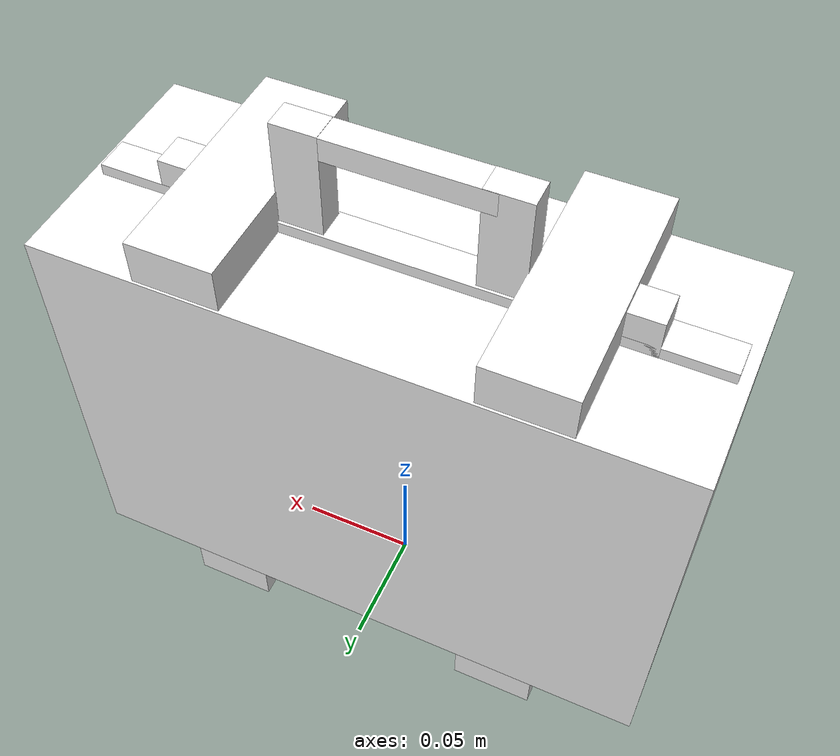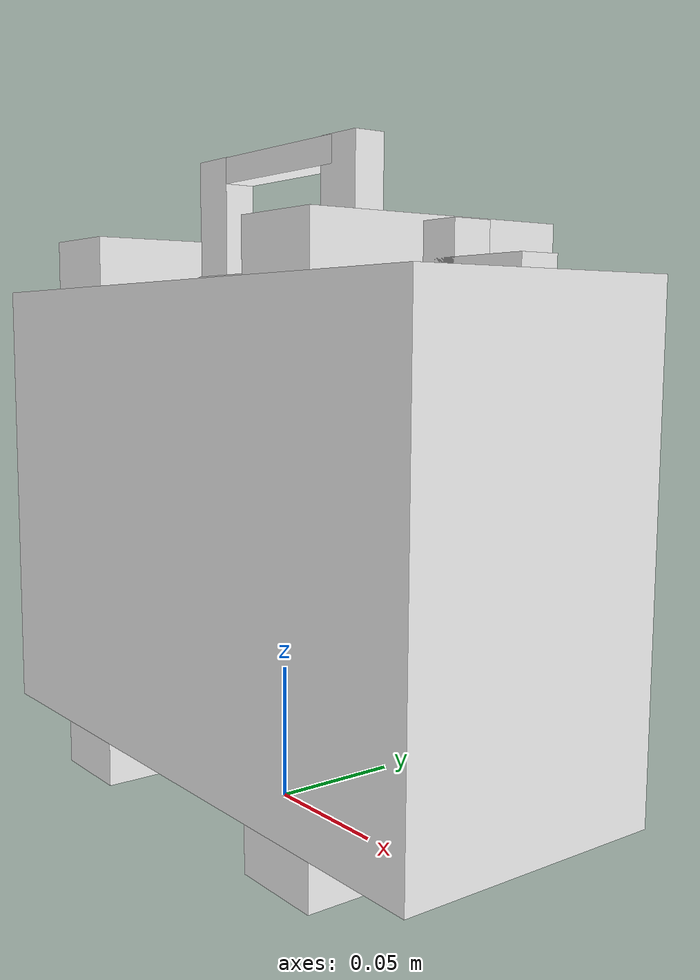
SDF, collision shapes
<?xml version='1.0' ?>
<sdf version="1.6">
    <model name="small_box_blue">
        <static>false</static>
        <link name="link">
            <pose>0 0 0.013357 0 0 0</pose>
            <inertial>
                <pose>0 0 0.1066 0 0 0</pose>
                <mass>1</mass>
                <inertia>
                    <ixx>0.00573484</ixx>
                    <ixy>0.0</ixy>
                    <ixz>0.0</ixz>
                    <iyy>0.010472300</iyy>
                    <iyz>0.0</iyz>
                    <izz>0.006559560</izz>
                </inertia>
            </inertial>
            <visual name="visual">
                <geometry>
                    <mesh>
                        <uri>meshes/blueboxsmall.dae</uri>
                    </mesh>
                </geometry>
                <material>
                    <diffuse>1.0 1.0 1.0</diffuse>
                    <specular>1.0 1.0 1.0</specular>
                    <pbr>
                        <metal>
                            <albedo_map>materials/textures/BlueBoxSmall_Albedo.jpg</albedo_map>
                            <normal_map>materials/textures/BlueBoxSmall_Normal.jpg</normal_map>
                            <roughness_map>materials/textures/BlueBoxSmall_Roughness.png</roughness_map>
                        </metal>
                    </pbr>
                </material>
            </visual>
            <collision name="Box017">
                <pose>0.0384546 0.0 0.192538 1.5708 0.0 1.5708</pose>
                <geometry>
                    <box>
                        <size>0.0120423 0.0701356 0.0183633</size>
                    </box>
                </geometry>
            </collision>
            <collision name="Box016">
                <pose>0.0 0.0 0.222694 0.0 0.0 -1.5708</pose>
                <geometry>
                    <box>
                        <size>0.0120423 0.0701356 0.00954892</size>
                    </box>
                </geometry>
            </collision>
            <collision name="Box015">
                <pose>-0.0384549 0.0 0.192538 1.5708 0.0 -1.5708</pose>
                <geometry>
                    <box>
                        <size>0.0120423 0.0701356 0.0183633</size>
                    </box>
                </geometry>
            </collision>
            <collision name="Box014">
                <pose>0.085798 0.0 0.186198 0.0 0.0 0.0</pose>
                <geometry>
                    <box>
                        <size>0.0196 0.0145054 0.0187445</size>
                    </box>
                </geometry>
            </collision>
            <collision name="Box013">
                <pose>-0.0857982 0.0 0.186198 0.0 0.0 0.0</pose>
                <geometry>
                    <box>
                        <size>0.0196 0.0145054 0.0187445</size>
                    </box>
                </geometry>
            </collision>
            <collision name="Box012">
                <pose>0.0 0.0 0.174798 0.0 0.0 0.0</pose>
                <geometry>
                    <box>
                        <size>0.24471 0.0145054 0.0187445</size>
                    </box>
                </geometry>
            </collision>
            <collision name="Box011">
                <pose>0.0646884 0.0 0.187166 -1.5708 0.0 -1.5708</pose>
                <geometry>
                    <box>
                        <size>0.100294 0.0209238 0.0347767</size>
                    </box>
                </geometry>
            </collision>
            <collision name="Box010">
                <pose>-0.064688 0.0 0.187166 1.5708 0.0 -1.5708</pose>
                <geometry>
                    <box>
                        <size>0.100294 0.0209238 0.0347767</size>
                    </box>
                </geometry>
            </collision>
            <collision name="Box009">
                <pose>0.0635274 0.000153558 0.000536935 -1.5708 0.0 -1.5708</pose>
                <geometry>
                    <box>
                        <size>0.0170663 0.0209238 0.0686768</size>
                    </box>
                </geometry>
            </collision>
            <collision name="Box008">
                <pose>-0.0635271 0.00015357 0.000536935 1.5708 0.0 -1.5708</pose>
                <geometry>
                    <box>
                        <size>0.0170663 0.0209238 0.0686768</size>
                    </box>
                </geometry>
            </collision>
            <collision name="Box007">
                <pose>0.0646884 0.0 -0.00296984 -1.5708 0.0 -1.5708</pose>
                <geometry>
                    <box>
                        <size>0.100294 0.0209238 0.0347767</size>
                    </box>
                </geometry>
            </collision>
            <collision name="Box006">
                <pose>-0.064688 0.0 -0.00296984 1.5708 0.0 -1.5708</pose>
                <geometry>
                    <box>
                        <size>0.100294 0.0209238 0.0347767</size>
                    </box>
                </geometry>
            </collision>
            <collision name="Box005">
                <pose>0.0 0.0 0.0919035 0.0 0.0 0.0</pose>
                <geometry>
                    <box>
                        <size>0.253798 0.102344 0.175273</size>
                    </box>
                </geometry>
            </collision>
        </link>
    </model>
</sdf>
